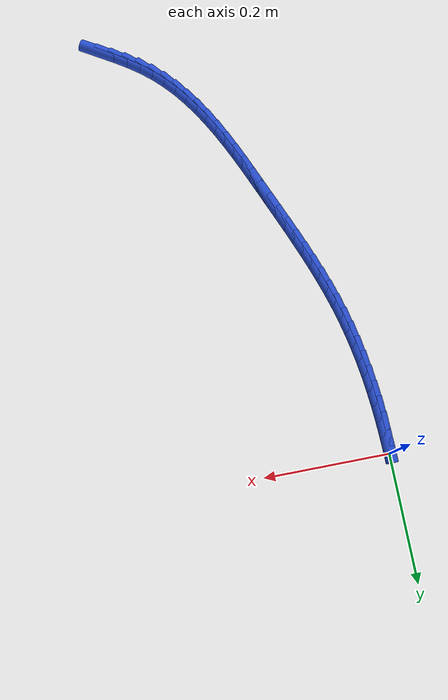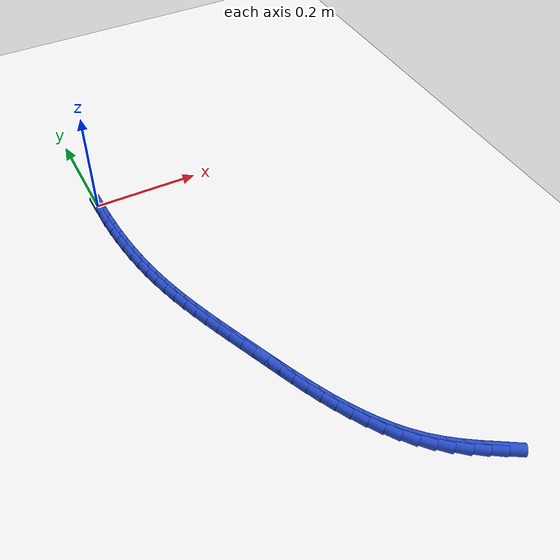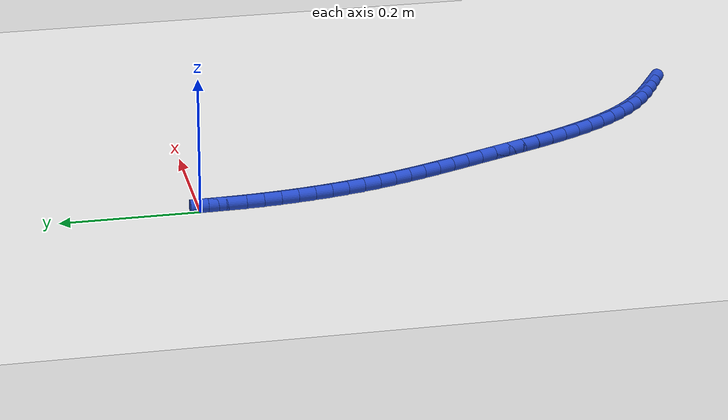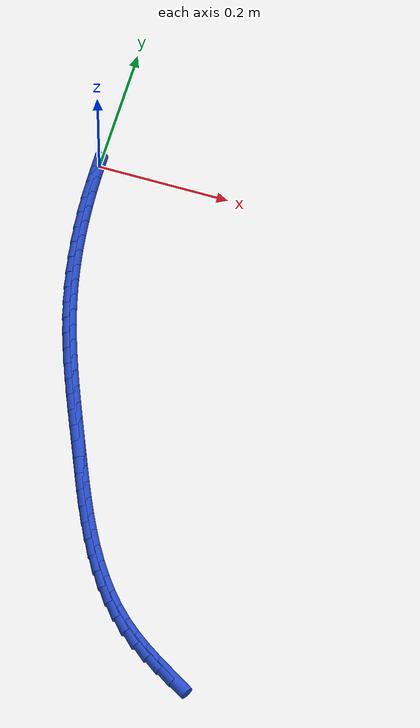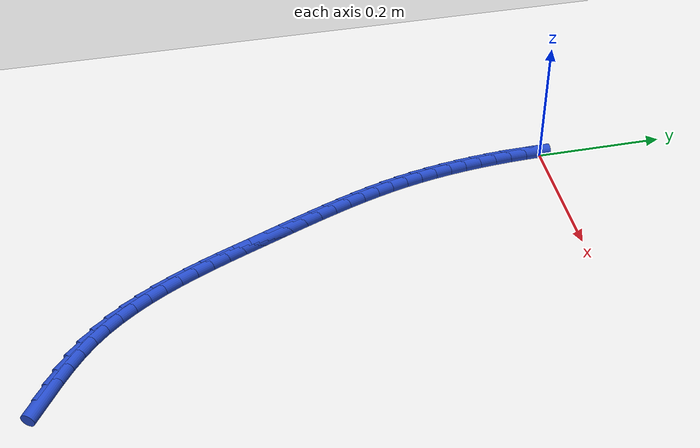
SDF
<sdf version="1.6">
 <world name="default">
  <model name="ground_plane">
   <static>1</static>
   <link name="link">
    <collision name="collision">
     <geometry><plane><normal>0 0 1</normal><size>100 100</size></plane></geometry>
     <surface><friction><ode><mu>100</mu><mu2>50</mu2></ode></friction></surface>
    </collision>
    <visual name="visual">
     <cast_shadows>0</cast_shadows>
     <geometry><plane><normal>0 0 1</normal><size>100 100</size></plane></geometry>
     <material>
      <script><uri>file://media/materials/scripts/gazebo.material</uri><name>Gazebo/WhiteGlow</name></script>
     </material>
    </visual>
   </link>
  </model>
  <model name="line">
   <link name="link_236">
    <pose>0.3313977566274787 -0.7529556453770596 0.01 0 1.57 -0.5443265762949945</pose>
    <collision name="collision">
     <geometry><cylinder><radius>0.01</radius><length>0.08</length></cylinder></geometry>
    </collision>
    <visual name="visual">
     <material>
      <script><name>Gazebo/Blue</name><uri>file://media/materials/scripts/gazebo.material</uri></script>
     </material>
     <geometry><cylinder><radius>0.01</radius><length>0.08</length></cylinder></geometry>
    </visual>
   </link>
   <link name="link_237">
    <pose>0.30997483055984626 -0.7399877883130189 0.01 0 1.57 -0.5798047004241216</pose>
    <collision name="collision">
     <geometry><cylinder><radius>0.01</radius><length>0.08</length></cylinder></geometry>
    </collision>
    <visual name="visual">
     <material>
      <script><name>Gazebo/Blue</name><uri>file://media/materials/scripts/gazebo.material</uri></script>
     </material>
     <geometry><cylinder><radius>0.01</radius><length>0.08</length></cylinder></geometry>
    </visual>
   </link>
   <link name="link_238">
    <pose>0.2892139387619641 -0.7263917013076822 0.01 0 1.57 -0.6320695712092862</pose>
    <collision name="collision">
     <geometry><cylinder><radius>0.01</radius><length>0.08</length></cylinder></geometry>
    </collision>
    <visual name="visual">
     <material>
      <script><name>Gazebo/Blue</name><uri>file://media/materials/scripts/gazebo.material</uri></script>
     </material>
     <geometry><cylinder><radius>0.01</radius><length>0.08</length></cylinder></geometry>
    </visual>
   </link>
   <link name="link_239">
    <pose>0.2693794717493918 -0.7118671334131977 0.01 0 1.57 -0.7015416895492008</pose>
    <collision name="collision">
     <geometry><cylinder><radius>0.01</radius><length>0.08</length></cylinder></geometry>
    </collision>
    <visual name="visual">
     <material>
      <script><name>Gazebo/Blue</name><uri>file://media/materials/scripts/gazebo.material</uri></script>
     </material>
     <geometry><cylinder><radius>0.01</radius><length>0.08</length></cylinder></geometry>
    </visual>
   </link>
   <link name="link_240">
    <pose>0.2507354353669066 -0.6961142790234162 0.01 0 1.57 -0.7815477588961909</pose>
    <collision name="collision">
     <geometry><cylinder><radius>0.01</radius><length>0.08</length></cylinder></geometry>
    </collision>
    <visual name="visual">
     <material>
      <script><name>Gazebo/Blue</name><uri>file://media/materials/scripts/gazebo.material</uri></script>
     </material>
     <geometry><cylinder><radius>0.01</radius><length>0.08</length></cylinder></geometry>
    </visual>
   </link>
   <link name="link_241">
    <pose>0.23344201774275866 -0.6789535245541886 0.01 0 1.57 -0.8560180139969015</pose>
    <collision name="collision">
     <geometry><cylinder><radius>0.01</radius><length>0.08</length></cylinder></geometry>
    </collision>
    <visual name="visual">
     <material>
      <script><name>Gazebo/Blue</name><uri>file://media/materials/scripts/gazebo.material</uri></script>
     </material>
     <geometry><cylinder><radius>0.01</radius><length>0.08</length></cylinder></geometry>
    </visual>
   </link>
   <link name="link_242">
    <pose>0.21741574795941895 -0.6604873457830776 0.01 0 1.57 -0.9222287193445731</pose>
    <collision name="collision">
     <geometry><cylinder><radius>0.01</radius><length>0.08</length></cylinder></geometry>
    </collision>
    <visual name="visual">
     <material>
      <script><name>Gazebo/Blue</name><uri>file://media/materials/scripts/gazebo.material</uri></script>
     </material>
     <geometry><cylinder><radius>0.01</radius><length>0.08</length></cylinder></geometry>
    </visual>
   </link>
   <link name="link_243">
    <pose>0.20253823794918685 -0.6408586428296779 0.01 0 1.57 -0.9800632201128654</pose>
    <collision name="collision">
     <geometry><cylinder><radius>0.01</radius><length>0.08</length></cylinder></geometry>
    </collision>
    <visual name="visual">
     <material>
      <script><name>Gazebo/Blue</name><uri>file://media/materials/scripts/gazebo.material</uri></script>
     </material>
     <geometry><cylinder><radius>0.01</radius><length>0.08</length></cylinder></geometry>
    </visual>
   </link>
   <link name="link_244">
    <pose>0.1886910996443597 -0.6202103158135821 0.01 0 1.57 -1.0296896726059612</pose>
    <collision name="collision">
     <geometry><cylinder><radius>0.01</radius><length>0.08</length></cylinder></geometry>
    </collision>
    <visual name="visual">
     <material>
      <script><name>Gazebo/Blue</name><uri>file://media/materials/scripts/gazebo.material</uri></script>
     </material>
     <geometry><cylinder><radius>0.01</radius><length>0.08</length></cylinder></geometry>
    </visual>
   </link>
   <link name="link_245">
    <pose>0.1757559449772366 -0.5986852648543854 0.01 0 1.57 -1.0714373249472322</pose>
    <collision name="collision">
     <geometry><cylinder><radius>0.01</radius><length>0.08</length></cylinder></geometry>
    </collision>
    <visual name="visual">
     <material>
      <script><name>Gazebo/Blue</name><uri>file://media/materials/scripts/gazebo.material</uri></script>
     </material>
     <geometry><cylinder><radius>0.01</radius><length>0.08</length></cylinder></geometry>
    </visual>
   </link>
   <link name="link_246">
    <pose>0.16361438588011548 -0.576426390071681 0.01 0 1.57 -1.1056984725523333</pose>
    <collision name="collision">
     <geometry><cylinder><radius>0.01</radius><length>0.08</length></cylinder></geometry>
    </collision>
    <visual name="visual">
     <material>
      <script><name>Gazebo/Blue</name><uri>file://media/materials/scripts/gazebo.material</uri></script>
     </material>
     <geometry><cylinder><radius>0.01</radius><length>0.08</length></cylinder></geometry>
    </visual>
   </link>
   <link name="link_247">
    <pose>0.15214803428529414 -0.5535765915850617 0.01 0 1.57 -1.132858262935776</pose>
    <collision name="collision">
     <geometry><cylinder><radius>0.01</radius><length>0.08</length></cylinder></geometry>
    </collision>
    <visual name="visual">
     <material>
      <script><name>Gazebo/Blue</name><uri>file://media/materials/scripts/gazebo.material</uri></script>
     </material>
     <geometry><cylinder><radius>0.01</radius><length>0.08</length></cylinder></geometry>
    </visual>
   </link>
   <link name="link_248">
    <pose>0.1412385021250718 -0.5302787695141231 0.01 0 1.57 -1.1532478430711874</pose>
    <collision name="collision">
     <geometry><cylinder><radius>0.01</radius><length>0.08</length></cylinder></geometry>
    </collision>
    <visual name="visual">
     <material>
      <script><name>Gazebo/Blue</name><uri>file://media/materials/scripts/gazebo.material</uri></script>
     </material>
     <geometry><cylinder><radius>0.01</radius><length>0.08</length></cylinder></geometry>
    </visual>
   </link>
   <link name="link_249">
    <pose>0.1307674013317459 -0.5066758239784575 0.01 0 1.57 -1.1671143613932597</pose>
    <collision name="collision">
     <geometry><cylinder><radius>0.01</radius><length>0.08</length></cylinder></geometry>
    </collision>
    <visual name="visual">
     <material>
      <script><name>Gazebo/Blue</name><uri>file://media/materials/scripts/gazebo.material</uri></script>
     </material>
     <geometry><cylinder><radius>0.01</radius><length>0.08</length></cylinder></geometry>
    </visual>
   </link>
   <link name="link_250">
    <pose>0.12061634383761546 -0.48291065509766 0.01 0 1.57 -1.1746018026769018</pose>
    <collision name="collision">
     <geometry><cylinder><radius>0.01</radius><length>0.08</length></cylinder></geometry>
    </collision>
    <visual name="visual">
     <material>
      <script><name>Gazebo/Blue</name><uri>file://media/materials/scripts/gazebo.material</uri></script>
     </material>
     <geometry><cylinder><radius>0.01</radius><length>0.08</length></cylinder></geometry>
    </visual>
   </link>
   <link name="link_251">
    <pose>0.11066694157497811 -0.459126162991323 0.01 0 1.57 -1.1760389692759057</pose>
    <collision name="collision">
     <geometry><cylinder><radius>0.01</radius><length>0.08</length></cylinder></geometry>
    </collision>
    <visual name="visual">
     <material>
      <script><name>Gazebo/Blue</name><uri>file://media/materials/scripts/gazebo.material</uri></script>
     </material>
     <geometry><cylinder><radius>0.01</radius><length>0.08</length></cylinder></geometry>
    </visual>
   </link>
   <link name="link_252">
    <pose>0.10080678005989269 -0.43545952476499833 0.01 0 1.57 -1.1765842483766207</pose>
    <collision name="collision">
     <geometry><cylinder><radius>0.01</radius><length>0.08</length></cylinder></geometry>
    </collision>
    <visual name="visual">
     <material>
      <script><name>Gazebo/Blue</name><uri>file://media/materials/scripts/gazebo.material</uri></script>
     </material>
     <geometry><cylinder><radius>0.01</radius><length>0.08</length></cylinder></geometry>
    </visual>
   </link>
   <link name="link_253">
    <pose>0.09102669896411654 -0.4119489944979822 0.01 0 1.57 -1.180674094042324</pose>
    <collision name="collision">
     <geometry><cylinder><radius>0.01</radius><length>0.08</length></cylinder></geometry>
    </collision>
    <visual name="visual">
     <material>
      <script><name>Gazebo/Blue</name><uri>file://media/materials/scripts/gazebo.material</uri></script>
     </material>
     <geometry><cylinder><radius>0.01</radius><length>0.08</length></cylinder></geometry>
    </visual>
   </link>
   <link name="link_254">
    <pose>0.081404774781411 -0.3885492487091862 0.01 0 1.57 -1.1885112686877568</pose>
    <collision name="collision">
     <geometry><cylinder><radius>0.01</radius><length>0.08</length></cylinder></geometry>
    </collision>
    <visual name="visual">
     <material>
      <script><name>Gazebo/Blue</name><uri>file://media/materials/scripts/gazebo.material</uri></script>
     </material>
     <geometry><cylinder><radius>0.01</radius><length>0.08</length></cylinder></geometry>
    </visual>
   </link>
   <link name="link_255">
    <pose>0.07202182556093474 -0.365212337360217 0.01 0 1.57 -1.200147934290749</pose>
    <collision name="collision">
     <geometry><cylinder><radius>0.01</radius><length>0.08</length></cylinder></geometry>
    </collision>
    <visual name="visual">
     <material>
      <script><name>Gazebo/Blue</name><uri>file://media/materials/scripts/gazebo.material</uri></script>
     </material>
     <geometry><cylinder><radius>0.01</radius><length>0.08</length></cylinder></geometry>
    </visual>
   </link>
   <link name="link_256">
    <pose>0.0629586693518475 -0.34189031041268375 0.01 0 1.57 -1.2156196945261517</pose>
    <collision name="collision">
     <geometry><cylinder><radius>0.01</radius><length>0.08</length></cylinder></geometry>
    </collision>
    <visual name="visual">
     <material>
      <script><name>Gazebo/Blue</name><uri>file://media/materials/scripts/gazebo.material</uri></script>
     </material>
     <geometry><cylinder><radius>0.01</radius><length>0.08</length></cylinder></geometry>
    </visual>
   </link>
   <link name="link_257">
    <pose>0.05429612420330817 -0.31853521782819405 0.01 0 1.57 -1.2349398441913388</pose>
    <collision name="collision">
     <geometry><cylinder><radius>0.01</radius><length>0.08</length></cylinder></geometry>
    </collision>
    <visual name="visual">
     <material>
      <script><name>Gazebo/Blue</name><uri>file://media/materials/scripts/gazebo.material</uri></script>
     </material>
     <geometry><cylinder><radius>0.01</radius><length>0.08</length></cylinder></geometry>
    </visual>
   </link>
   <link name="link_258">
    <pose>0.04611500816447573 -0.2950991095683549 0.01 0 1.57 -1.258092011723201</pose>
    <collision name="collision">
     <geometry><cylinder><radius>0.01</radius><length>0.08</length></cylinder></geometry>
    </collision>
    <visual name="visual">
     <material>
      <script><name>Gazebo/Blue</name><uri>file://media/materials/scripts/gazebo.material</uri></script>
     </material>
     <geometry><cylinder><radius>0.01</radius><length>0.08</length></cylinder></geometry>
    </visual>
   </link>
   <link name="link_259">
    <pose>0.038496139284509845 -0.2715340355947758 0.01 0 1.57 -1.2850214829838456</pose>
    <collision name="collision">
     <geometry><cylinder><radius>0.01</radius><length>0.08</length></cylinder></geometry>
    </collision>
    <visual name="visual">
     <material>
      <script><name>Gazebo/Blue</name><uri>file://media/materials/scripts/gazebo.material</uri></script>
     </material>
     <geometry><cylinder><radius>0.01</radius><length>0.08</length></cylinder></geometry>
    </visual>
   </link>
   <link name="link_260">
    <pose>0.03152033561256927 -0.24779204586906328 0.01 0 1.57 -1.3156065439409148</pose>
    <collision name="collision">
     <geometry><cylinder><radius>0.01</radius><length>0.08</length></cylinder></geometry>
    </collision>
    <visual name="visual">
     <material>
      <script><name>Gazebo/Blue</name><uri>file://media/materials/scripts/gazebo.material</uri></script>
     </material>
     <geometry><cylinder><radius>0.01</radius><length>0.08</length></cylinder></geometry>
    </visual>
   </link>
   <link name="link_261">
    <pose>0.025267995889416476 -0.22382546895407526 0.01 0 1.57 -1.347988844791065</pose>
    <collision name="collision">
     <geometry><cylinder><radius>0.01</radius><length>0.08</length></cylinder></geometry>
    </collision>
    <visual name="visual">
     <material>
      <script><name>Gazebo/Blue</name><uri>file://media/materials/scripts/gazebo.material</uri></script>
     </material>
     <geometry><cylinder><radius>0.01</radius><length>0.08</length></cylinder></geometry>
    </visual>
   </link>
   <link name="link_262">
    <pose>0.019781888327452663 -0.1996116362798938 0.01 0 1.57 -1.3790659658799178</pose>
    <collision name="collision">
     <geometry><cylinder><radius>0.01</radius><length>0.08</length></cylinder></geometry>
    </collision>
    <visual name="visual">
     <material>
      <script><name>Gazebo/Blue</name><uri>file://media/materials/scripts/gazebo.material</uri></script>
     </material>
     <geometry><cylinder><radius>0.01</radius><length>0.08</length></cylinder></geometry>
    </visual>
   </link>
   <link name="link_263">
    <pose>0.015037859982731114 -0.1751723437276705 0.01 0 1.57 -1.4085476488191786</pose>
    <collision name="collision">
     <geometry><cylinder><radius>0.01</radius><length>0.08</length></cylinder></geometry>
    </collision>
    <visual name="visual">
     <material>
      <script><name>Gazebo/Blue</name><uri>file://media/materials/scripts/gazebo.material</uri></script>
     </material>
     <geometry><cylinder><radius>0.01</radius><length>0.08</length></cylinder></geometry>
    </visual>
   </link>
   <link name="link_264">
    <pose>0.011004864668912743 -0.1505339672583928 0.01 0 1.57 -1.4364685825396248</pose>
    <collision name="collision">
     <geometry><cylinder><radius>0.01</radius><length>0.08</length></cylinder></geometry>
    </collision>
    <visual name="visual">
     <material>
      <script><name>Gazebo/Blue</name><uri>file://media/materials/scripts/gazebo.material</uri></script>
     </material>
     <geometry><cylinder><radius>0.01</radius><length>0.08</length></cylinder></geometry>
    </visual>
   </link>
   <link name="link_265">
    <pose>0.007651856199659002 -0.12572288283305158 0.01 0 1.57 -1.4628700679228164</pose>
    <collision name="collision">
     <geometry><cylinder><radius>0.01</radius><length>0.08</length></cylinder></geometry>
    </collision>
    <visual name="visual">
     <material>
      <script><name>Gazebo/Blue</name><uri>file://media/materials/scripts/gazebo.material</uri></script>
     </material>
     <geometry><cylinder><radius>0.01</radius><length>0.08</length></cylinder></geometry>
    </visual>
   </link>
   <link name="link_266">
    <pose>0.004947788388630891 -0.10076546641263442 0.01 0 1.57 -1.4877979671588175</pose>
    <collision name="collision">
     <geometry><cylinder><radius>0.01</radius><length>0.08</length></cylinder></geometry>
    </collision>
    <visual name="visual">
     <material>
      <script><name>Gazebo/Blue</name><uri>file://media/materials/scripts/gazebo.material</uri></script>
     </material>
     <geometry><cylinder><radius>0.01</radius><length>0.08</length></cylinder></geometry>
    </visual>
   </link>
   <link name="link_267">
    <pose>0.0028616150494897826 -0.075688093958132 0.01 0 1.57 -1.5113009390008203</pose>
    <collision name="collision">
     <geometry><cylinder><radius>0.01</radius><length>0.08</length></cylinder></geometry>
    </collision>
    <visual name="visual">
     <material>
      <script><name>Gazebo/Blue</name><uri>file://media/materials/scripts/gazebo.material</uri></script>
     </material>
     <geometry><cylinder><radius>0.01</radius><length>0.08</length></cylinder></geometry>
    </visual>
   </link>
   <link name="link_268">
    <pose>0.001362289995896797 -0.05051714143053282 0.01 0 1.57 -1.5334289479754717</pose>
    <collision name="collision">
     <geometry><cylinder><radius>0.01</radius><length>0.08</length></cylinder></geometry>
    </collision>
    <visual name="visual">
     <material>
      <script><name>Gazebo/Blue</name><uri>file://media/materials/scripts/gazebo.material</uri></script>
     </material>
     <geometry><cylinder><radius>0.01</radius><length>0.08</length></cylinder></geometry>
    </visual>
   </link>
   <link name="link_269">
    <pose>0.0004187670415131189 -0.02527898479082528 0.01 0 1.57 -1.5542320246922785</pose>
    <collision name="collision">
     <geometry><cylinder><radius>0.01</radius><length>0.08</length></cylinder></geometry>
    </collision>
    <visual name="visual">
     <material>
      <script><name>Gazebo/Blue</name><uri>file://media/materials/scripts/gazebo.material</uri></script>
     </material>
     <geometry><cylinder><radius>0.01</radius><length>0.08</length></cylinder></geometry>
    </visual>
   </link>
  </model>
 </world>
</sdf>
